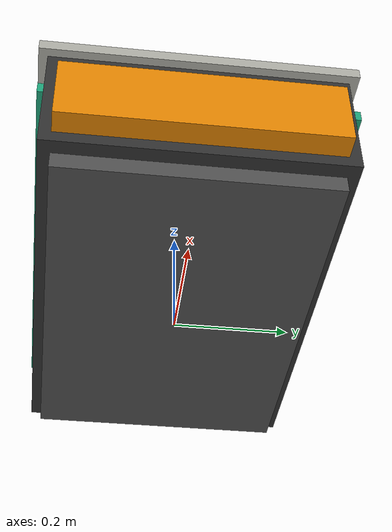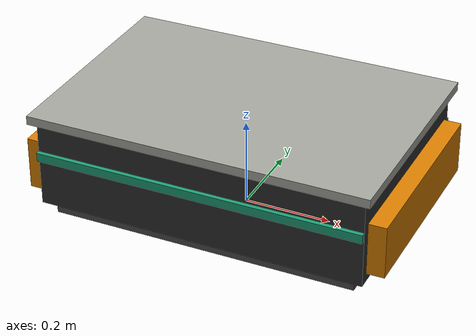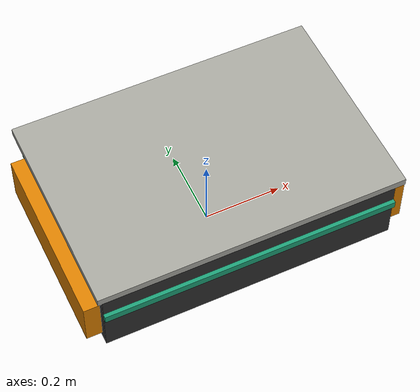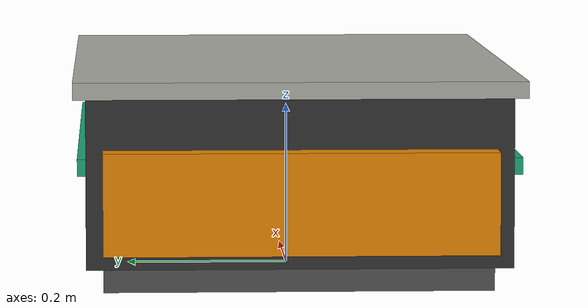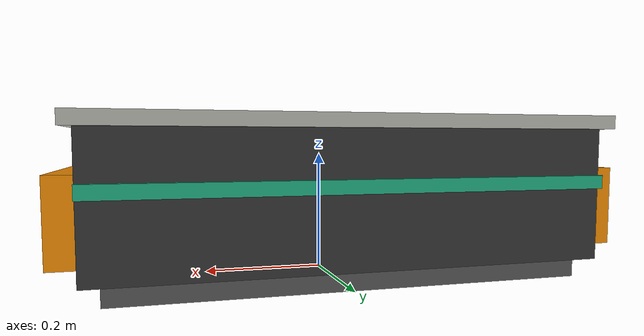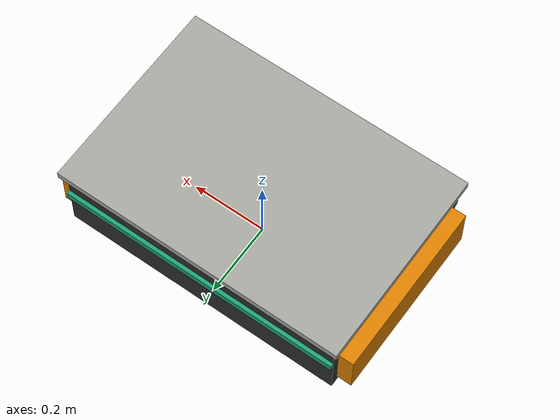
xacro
<?xml version="1.0"?>
<robot xmlns:xacro="http://www.ros.org/wiki/xacro" name="helmsman">

    <!-- ================= Properties ================= -->
    <xacro:property name="body_length" value="0.75"/>
    <xacro:property name="body_width" value="0.50"/>
    <xacro:property name="body_height" value="0.20"/>
    <xacro:property name="body_mass" value="25.0"/>

    <xacro:property name="wheel_radius" value="0.085"/>
    <xacro:property name="ground_clearance" value="0.04"/>

    <!-- ================= Materials (as macros, inlined per visual) ================= -->
    <xacro:macro name="mat_charcoal">
        <material name="charcoal">
            <color rgba="0.18 0.18 0.18 1.0"/>
        </material>
    </xacro:macro>
    <xacro:macro name="mat_light_gray">
        <material name="light_gray">
            <color rgba="0.65 0.65 0.62 1.0"/>
        </material>
    </xacro:macro>
    <xacro:macro name="mat_dark_gray">
        <material name="dark_gray">
            <color rgba="0.30 0.30 0.30 1.0"/>
        </material>
    </xacro:macro>
    <xacro:macro name="mat_teal">
        <material name="teal">
            <color rgba="0.11 0.62 0.46 1.0"/>
        </material>
    </xacro:macro>
    <xacro:macro name="mat_orange">
        <material name="orange">
            <color rgba="0.86 0.50 0.0 1.0"/>
        </material>
    </xacro:macro>

    <!-- ================= Inertia macros ================= -->
    <xacro:macro name="box_inertia" params="m x y z">
        <inertial>
            <mass value="${m}"/>
            <inertia ixx="${(m/12.0)*(y*y+z*z)}" ixy="0" ixz="0" iyy="${(m/12.0)*(x*x+z*z)}" iyz="0" izz="${(m/12.0)*(x*x+y*y)}"/>
        </inertial>
    </xacro:macro>

    <!-- ================= base_footprint ================= -->
    <link name="base_footprint"/>

    <joint name="base_footprint_joint" type="fixed">
        <parent link="base_footprint"/>
        <child link="base_link"/>
        <origin xyz="0 0 ${ground_clearance + body_height/2}" rpy="0 0 0"/>
    </joint>

    <!-- ================= base_link: the chassis ================= -->
    <link name="base_link">

        <!-- main body -->
        <visual>
            <geometry>
                <box size="${body_length} ${body_width} ${body_height}"/>
            </geometry>
            <xacro:mat_charcoal/>
        </visual>

        <!-- deck plate: slightly larger, thin, sits on top -->
        <visual>
            <origin xyz="0 0 ${body_height/2 + 0.01}"/>
            <geometry>
                <box size="${body_length + 0.03} ${body_width + 0.03} 0.02"/>
            </geometry>
            <xacro:mat_light_gray/>
        </visual>

        <!-- underbody skirt: narrower, hangs below -->
        <visual>
            <origin xyz="0 0 ${-body_height/2 - 0.015}"/>
            <geometry>
                <box size="${body_length - 0.05} ${body_width - 0.04} 0.03"/>
            </geometry>
            <xacro:mat_dark_gray/>
        </visual>

        <!-- LED strips, left and right flanks -->
        <visual>
            <origin xyz="0 ${ body_width/2 + 0.005} 0.02"/>
            <geometry>
                <box size="${body_length} 0.01 0.02"/>
            </geometry>
            <xacro:mat_teal/>
        </visual>
        <visual>
            <origin xyz="0 ${-body_width/2 - 0.005} 0.02"/>
            <geometry>
                <box size="${body_length} 0.01 0.02"/>
            </geometry>
            <xacro:mat_teal/>
        </visual>

        <!-- bumper bars, front and rear -->
        <visual>
            <origin xyz="${ body_length/2 + 0.02} 0 -0.02"/>
            <geometry>
                <box size="0.04 ${body_width - 0.04} 0.12"/>
            </geometry>
            <xacro:mat_orange/>
        </visual>
        <visual>
            <origin xyz="${-body_length/2 - 0.02} 0 -0.02"/>
            <geometry>
                <box size="0.04 ${body_width - 0.04} 0.12"/>
            </geometry>
            <xacro:mat_orange/>
        </visual>

        <!-- ONE simple collision for the whole chassis -->
        <collision>
            <geometry>
                <box size="${body_length + 0.08} ${body_width} ${body_height + 0.05}"/>
            </geometry>
        </collision>

        <xacro:box_inertia m="${body_mass}" x="${body_length}" y="${body_width}" z="${body_height}"/>
    </link>

</robot>
